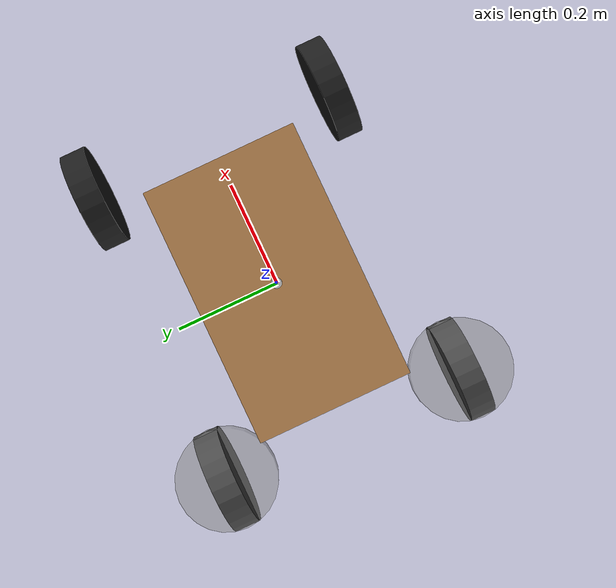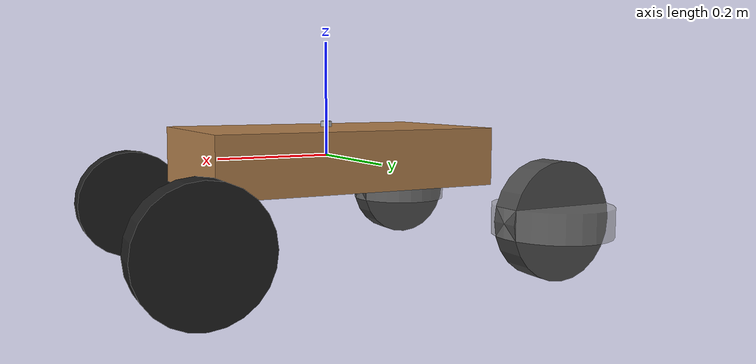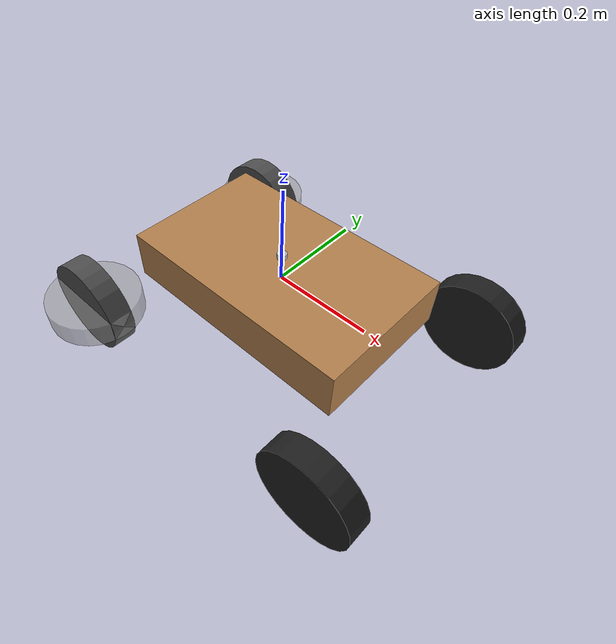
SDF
<sdf version='1.7'>
  <model name='one_wheel'>
    <link name='base_link'>
      <inertial>
        <pose>0 0 0 0 -0 0</pose>
        <mass>8</mass>
        <inertia>
          <ixx>0.0666667</ixx>
          <ixy>0</ixy>
          <ixz>0</ixz>
          <iyy>0.173333</iyy>
          <iyz>0</iyz>
          <izz>0.173333</izz>
        </inertia>
      </inertial>
      <collision name='base_link_fixed_joint_lump__body_link_collision'>
        <pose>0 0 0 0 -0 0</pose>
        <geometry>
          <box>
            <size>0.5 0.3 0.1</size>
          </box>
        </geometry>
        <surface>
          <contact>
            <ode/>
          </contact>
          <friction>
            <ode/>
          </friction>
        </surface>
      </collision>
      <visual name='base_link_fixed_joint_lump__body_link_visual'>
        <pose>0 0 0 0 -0 0</pose>
        <geometry>
          <box>
            <size>0.5 0.3 0.1</size>
          </box>
        </geometry>
        <material>
          <script>
            <name>Gazebo/Wood</name>
            <uri>file://media/materials/scripts/gazebo.material</uri>
          </script>
        </material>
      </visual>
    </link>
    <joint name='bl_axle' type='revolute'>
      <pose relative_to='base_link'>0.3 -0.25 -0.1 1.57079 -0 0</pose>
      <parent>base_link</parent>
      <child>bl_1</child>
      <axis>
        <xyz>0 0 1</xyz>
        <limit>
          <effort>20</effort>
          <velocity>20</velocity>
          <lower>-1e+16</lower>
          <upper>1e+16</upper>
        </limit>
        <dynamics>
          <spring_reference>0</spring_reference>
          <spring_stiffness>0</spring_stiffness>
        </dynamics>
      </axis>
    </joint>
    <link name='bl_1'>
      <pose relative_to='bl_axle'>0 0 0 0 -0 0</pose>
      <inertial>
        <pose>0 0 0 0 -0 0</pose>
        <mass>0.3</mass>
        <inertia>
          <ixx>0.0008125</ixx>
          <ixy>0</ixy>
          <ixz>0</ixz>
          <iyy>0.0008125</iyy>
          <iyz>0</iyz>
          <izz>0.0015</izz>
        </inertia>
      </inertial>
      <collision name='bl_1_collision'>
        <pose>0 0 0 0 -0 0</pose>
        <geometry>
          <cylinder>
            <length>0.05</length>
            <radius>0.1</radius>
          </cylinder>
        </geometry>
        <surface>
          <contact>
            <ode>
              <kp>100000</kp>
              <kd>10</kd>
            </ode>
          </contact>
          <friction>
            <ode>
              <mu>1</mu>
              <mu2>1</mu2>
            </ode>
          </friction>
        </surface>
      </collision>
      <visual name='bl_1_visual'>
        <pose>0 0 0 0 -0 0</pose>
        <geometry>
          <cylinder>
            <length>0.05</length>
            <radius>0.1</radius>
          </cylinder>
        </geometry>
        <material>
          <script>
            <name>Gazebo/Black</name>
            <uri>file://media/materials/scripts/gazebo.material</uri>
          </script>
        </material>
      </visual>
      <self_collide>1</self_collide>
      <slip1>100</slip1>
    </link>
    <joint name='br_axle' type='revolute'>
      <pose relative_to='base_link'>0.3 0.25 -0.1 1.57079 -0 0</pose>
      <parent>base_link</parent>
      <child>br_1</child>
      <axis>
        <xyz>0 0 1</xyz>
        <limit>
          <effort>20</effort>
          <velocity>20</velocity>
          <lower>-1e+16</lower>
          <upper>1e+16</upper>
        </limit>
        <dynamics>
          <spring_reference>0</spring_reference>
          <spring_stiffness>0</spring_stiffness>
        </dynamics>
      </axis>
    </joint>
    <link name='br_1'>
      <pose relative_to='br_axle'>0 0 0 0 -0 0</pose>
      <inertial>
        <pose>0 0 0 0 -0 0</pose>
        <mass>0.3</mass>
        <inertia>
          <ixx>0.0008125</ixx>
          <ixy>0</ixy>
          <ixz>0</ixz>
          <iyy>0.0008125</iyy>
          <iyz>0</iyz>
          <izz>0.0015</izz>
        </inertia>
      </inertial>
      <collision name='br_1_collision'>
        <pose>0 0 0 0 -0 0</pose>
        <geometry>
          <cylinder>
            <length>0.05</length>
            <radius>0.1</radius>
          </cylinder>
        </geometry>
        <surface>
          <contact>
            <ode>
              <kp>100000</kp>
              <kd>10</kd>
            </ode>
          </contact>
          <friction>
            <ode>
              <mu>1</mu>
              <mu2>1</mu2>
            </ode>
          </friction>
        </surface>
      </collision>
      <visual name='br_1_visual'>
        <pose>0 0 0 0 -0 0</pose>
        <geometry>
          <cylinder>
            <length>0.05</length>
            <radius>0.1</radius>
          </cylinder>
        </geometry>
        <material>
          <script>
            <name>Gazebo/Black</name>
            <uri>file://media/materials/scripts/gazebo.material</uri>
          </script>
        </material>
      </visual>
      <self_collide>1</self_collide>
      <slip1>100</slip1>
    </link>
    <joint name='l_steer' type='revolute'>
      <pose relative_to='base_link'>-0.3 -0.25 -0.1 0 -0 0</pose>
      <parent>base_link</parent>
      <child>l_steer_1</child>
      <axis>
        <xyz>0 0 1</xyz>
        <limit>
          <lower>-0.95</lower>
          <upper>0.95</upper>
          <effort>100</effort>
          <velocity>100</velocity>
        </limit>
        <dynamics>
          <damping>0</damping>
          <friction>1</friction>
          <spring_reference>0</spring_reference>
          <spring_stiffness>0</spring_stiffness>
        </dynamics>
      </axis>
    </joint>
    <link name='l_steer_1'>
      <pose relative_to='l_steer'>0 0 0 0 -0 0</pose>
      <inertial>
        <pose>0.003381 0 0.02162 0 -0 0</pose>
        <mass>1</mass>
        <inertia>
          <ixx>1</ixx>
          <ixy>0</ixy>
          <ixz>0</ixz>
          <iyy>1</iyy>
          <iyz>0</iyz>
          <izz>1</izz>
        </inertia>
      </inertial>
      <visual name='l_steer_1_visual'>
        <pose>0 0 0 0 -0 0</pose>
        <geometry>
          <cylinder>
            <length>0.05</length>
            <radius>0.1</radius>
          </cylinder>
        </geometry>
        <material>
          <script>
            <name>Gazebo/GreyTransparent</name>
            <uri>file://media/materials/scripts/gazebo.material</uri>
          </script>
        </material>
      </visual>
      <self_collide>1</self_collide>
    </link>
    <joint name='fl_axle' type='revolute'>
      <pose relative_to='l_steer_1'>0 0 0 1.57079 -0 0</pose>
      <parent>l_steer_1</parent>
      <child>fl_1</child>
      <axis>
        <xyz>0 0 1</xyz>
        <limit>
          <effort>20</effort>
          <velocity>20</velocity>
          <lower>-1e+16</lower>
          <upper>1e+16</upper>
        </limit>
        <dynamics>
          <spring_reference>0</spring_reference>
          <spring_stiffness>0</spring_stiffness>
        </dynamics>
      </axis>
    </joint>
    <link name='fl_1'>
      <pose relative_to='fl_axle'>0 0 0 0 -0 0</pose>
      <inertial>
        <pose>0 0 0 0 -0 0</pose>
        <mass>0.3</mass>
        <inertia>
          <ixx>0.0008125</ixx>
          <ixy>0</ixy>
          <ixz>0</ixz>
          <iyy>0.0008125</iyy>
          <iyz>0</iyz>
          <izz>0.0015</izz>
        </inertia>
      </inertial>
      <collision name='fl_1_collision'>
        <pose>0 0 0 0 -0 0</pose>
        <geometry>
          <cylinder>
            <length>0.05</length>
            <radius>0.1</radius>
          </cylinder>
        </geometry>
        <surface>
          <contact>
            <ode>
              <kp>100000</kp>
              <kd>10</kd>
            </ode>
          </contact>
          <friction>
            <ode>
              <mu>1</mu>
              <mu2>1</mu2>
            </ode>
          </friction>
        </surface>
      </collision>
      <visual name='fl_1_visual'>
        <pose>0 0 0 0 -0 0</pose>
        <geometry>
          <cylinder>
            <length>0.05</length>
            <radius>0.1</radius>
          </cylinder>
        </geometry>
        <material>
          <script>
            <name>Gazebo/DarkGrey</name>
            <uri>file://media/materials/scripts/gazebo.material</uri>
          </script>
        </material>
      </visual>
      <self_collide>1</self_collide>
      <slip1>100</slip1>
    </link>
    <joint name='r_steer' type='revolute'>
      <pose relative_to='base_link'>-0.3 0.25 -0.1 0 -0 0</pose>
      <parent>base_link</parent>
      <child>r_steer_1</child>
      <axis>
        <xyz>0 0 1</xyz>
        <limit>
          <lower>-0.95</lower>
          <upper>0.95</upper>
          <effort>100</effort>
          <velocity>100</velocity>
        </limit>
        <dynamics>
          <damping>0</damping>
          <friction>1</friction>
          <spring_reference>0</spring_reference>
          <spring_stiffness>0</spring_stiffness>
        </dynamics>
      </axis>
    </joint>
    <link name='r_steer_1'>
      <pose relative_to='r_steer'>0 0 0 0 -0 0</pose>
      <inertial>
        <pose>0.003381 0 0.02162 0 -0 0</pose>
        <mass>1</mass>
        <inertia>
          <ixx>1</ixx>
          <ixy>0</ixy>
          <ixz>0</ixz>
          <iyy>1</iyy>
          <iyz>0</iyz>
          <izz>1</izz>
        </inertia>
      </inertial>
      <visual name='r_steer_1_visual'>
        <pose>0 0 0 0 -0 0</pose>
        <geometry>
          <cylinder>
            <length>0.05</length>
            <radius>0.1</radius>
          </cylinder>
        </geometry>
        <material>
          <script>
            <name>Gazebo/GreyTransparent</name>
            <uri>file://media/materials/scripts/gazebo.material</uri>
          </script>
        </material>
      </visual>
      <self_collide>1</self_collide>
    </link>
    <joint name='fr_axle' type='revolute'>
      <pose relative_to='r_steer_1'>0 0 0 1.57079 -0 0</pose>
      <parent>r_steer_1</parent>
      <child>fr_1</child>
      <axis>
        <xyz>0 0 1</xyz>
        <limit>
          <effort>20</effort>
          <velocity>20</velocity>
          <lower>-1e+16</lower>
          <upper>1e+16</upper>
        </limit>
        <dynamics>
          <spring_reference>0</spring_reference>
          <spring_stiffness>0</spring_stiffness>
        </dynamics>
      </axis>
    </joint>
    <link name='fr_1'>
      <pose relative_to='fr_axle'>0 0 0 0 -0 0</pose>
      <inertial>
        <pose>0 0 0 0 -0 0</pose>
        <mass>0.3</mass>
        <inertia>
          <ixx>0.0008125</ixx>
          <ixy>0</ixy>
          <ixz>0</ixz>
          <iyy>0.0008125</iyy>
          <iyz>0</iyz>
          <izz>0.0015</izz>
        </inertia>
      </inertial>
      <collision name='fr_1_collision'>
        <pose>0 0 0 0 -0 0</pose>
        <geometry>
          <cylinder>
            <length>0.05</length>
            <radius>0.1</radius>
          </cylinder>
        </geometry>
        <surface>
          <contact>
            <ode>
              <kp>100000</kp>
              <kd>10</kd>
            </ode>
          </contact>
          <friction>
            <ode>
              <mu>1</mu>
              <mu2>1</mu2>
            </ode>
          </friction>
        </surface>
      </collision>
      <visual name='fr_1_visual'>
        <pose>0 0 0 0 -0 0</pose>
        <geometry>
          <cylinder>
            <length>0.05</length>
            <radius>0.1</radius>
          </cylinder>
        </geometry>
        <material>
          <script>
            <name>Gazebo/DarkGrey</name>
            <uri>file://media/materials/scripts/gazebo.material</uri>
          </script>
        </material>
      </visual>
      <self_collide>1</self_collide>
      <slip1>100</slip1>
    </link>
    <joint name='steering_joint' type='revolute'>
      <pose relative_to='base_link'>0 0 0.056 0 -0 0</pose>
      <parent>base_link</parent>
      <child>steering_wheel</child>
      <axis>
        <xyz>0 0 1</xyz>
        <limit>
          <effort>100</effort>
          <velocity>100</velocity>
          <lower>-1e+16</lower>
          <upper>1e+16</upper>
        </limit>
        <dynamics>
          <damping>0</damping>
          <friction>1</friction>
          <spring_reference>0</spring_reference>
          <spring_stiffness>0</spring_stiffness>
        </dynamics>
      </axis>
    </joint>
    <link name='steering_wheel'>
      <pose relative_to='steering_joint'>0 0 0 0 -0 0</pose>
      <inertial>
        <pose>0 0 0 0 -0 0</pose>
        <mass>0.8</mass>
        <inertia>
          <ixx>2.66667e-05</ixx>
          <ixy>0</ixy>
          <ixz>0</ixz>
          <iyy>2.66667e-05</iyy>
          <iyz>0</iyz>
          <izz>4e-05</izz>
        </inertia>
      </inertial>
      <visual name='steering_wheel_visual'>
        <pose>0 0 0 0 -0 0</pose>
        <geometry>
          <cylinder>
            <length>0.01</length>
            <radius>0.01</radius>
          </cylinder>
        </geometry>
      </visual>
    </link>
    <static>0</static>
    <plugin name='ackermann_drive' filename='libgazebo_ros_ackermann_drive.so'>
      <ros>
        <namespace>ackermann_dorothy</namespace>
        <remapping>cmd_vel:=cmd_vel</remapping>
        <remapping>odom:=odom</remapping>
        <remapping>distance:=distance</remapping>
      </ros>
      <update_rate>100.0</update_rate>
      <front_left_joint>fl_axle</front_left_joint>
      <front_right_joint>fr_axle</front_right_joint>
      <rear_left_joint>bl_axle</rear_left_joint>
      <rear_right_joint>br_axle</rear_right_joint>
      <left_steering_joint>l_steer</left_steering_joint>
      <right_steering_joint>r_steer</right_steering_joint>
      <max_steer>0.6</max_steer>
      <max_steering_angle>2</max_steering_angle>
      <max_speed>10</max_speed>
      <left_steering_pid_gain>100 0 17</left_steering_pid_gain>
      <left_steering_i_range>0 0</left_steering_i_range>
      <right_steering_pid_gain>100 0 17</right_steering_pid_gain>
      <right_steering_i_range>0 0</right_steering_i_range>
      <linear_velocity_pid_gain>1 0 0</linear_velocity_pid_gain>
      <linear_velocity_i_range>0 0</linear_velocity_i_range>
      <publish_odom>1</publish_odom>
      <publish_odom_tf>1</publish_odom_tf>
      <publish_wheel_tf>1</publish_wheel_tf>
      <publish_distance>1</publish_distance>
      <odometry_frame>odom</odometry_frame>
      <robot_base_frame>base_link</robot_base_frame>
    </plugin>
  </model>
</sdf>
